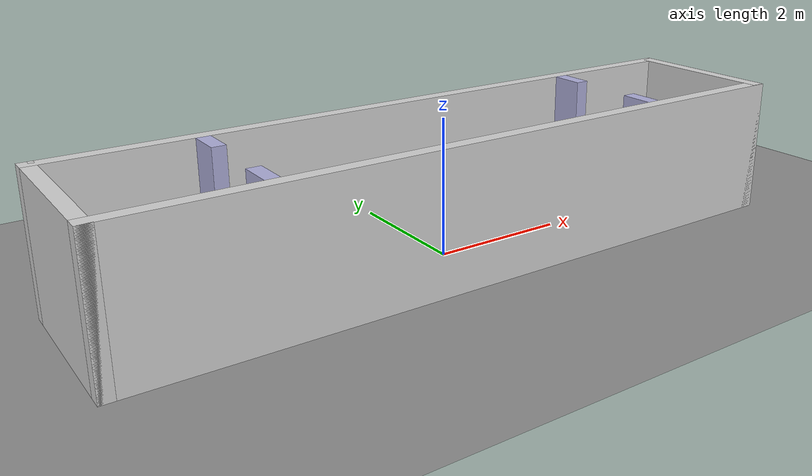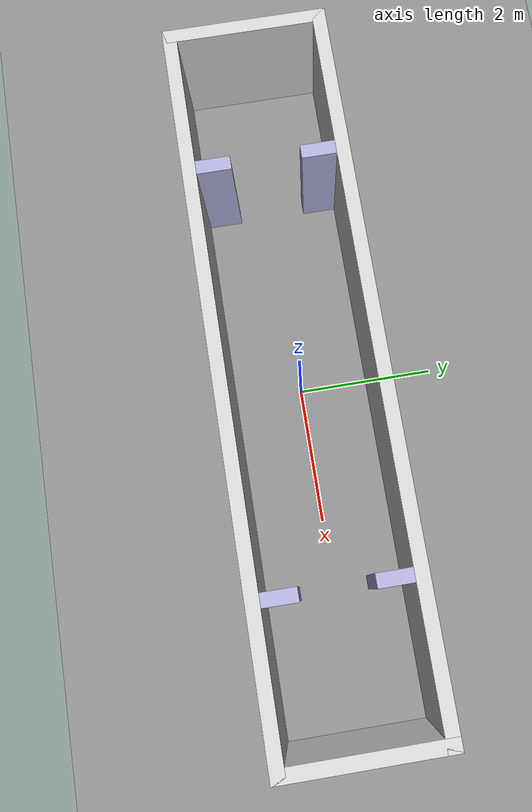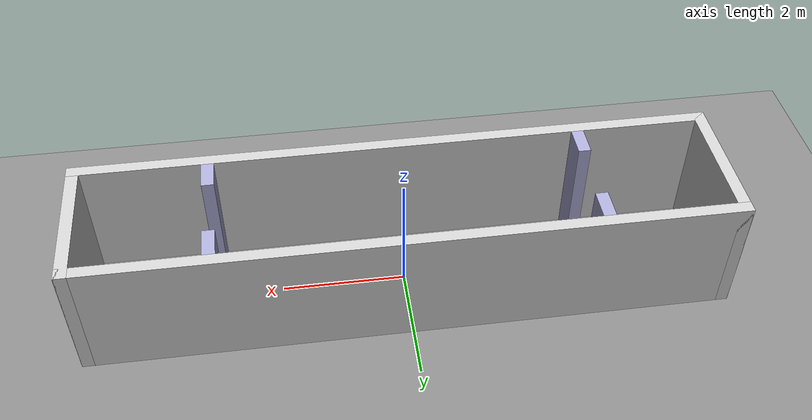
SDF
<?xml version="1.0"?>
<sdf version="1.9">
  <world name="symmetric_corridor">

    <!-- ═══ Plugins requeridos por Ignition Fortress ═══════════════════ -->
    <plugin filename="gz-sim-physics-system"
            name="gz::sim::systems::Physics"/>
    <plugin filename="gz-sim-user-commands-system"
            name="gz::sim::systems::UserCommands"/>
    <plugin filename="gz-sim-scene-broadcaster-system"
            name="gz::sim::systems::SceneBroadcaster"/>
    <plugin filename="gz-sim-contact-system"
            name="gz::sim::systems::Contact"/>
    <!-- OBLIGATORIO para que el RPLIDAR (y cualquier sensor) genere datos -->
    <plugin filename="gz-sim-sensors-system"
            name="gz::sim::systems::Sensors">
      <render_engine>ogre2</render_engine>
    </plugin>
    <plugin filename="gz-sim-imu-system"
            name="gz::sim::systems::Imu"/>

    <!-- ═══ Física ════════════════════════════════════════════════════ -->
    <physics name="1ms" type="ignored">
      <max_step_size>0.001</max_step_size>
      <real_time_factor>1.0</real_time_factor>
    </physics>

    <!-- ═══ Iluminación ═══════════════════════════════════════════════ -->
    <light type="directional" name="sun">
      <cast_shadows>true</cast_shadows>
      <pose>0 0 10 0 0 0</pose>
      <diffuse>0.9 0.9 0.9 1</diffuse>
      <specular>0.3 0.3 0.3 1</specular>
      <direction>-0.5 0.1 -0.9</direction>
    </light>

    <!-- Luz adicional relleno para evitar zonas negras en R1/R2 -->
    <light type="point" name="fill_light">
      <pose>0 0 1.8 0 0 0</pose>
      <diffuse>0.4 0.4 0.4 1</diffuse>
      <specular>0 0 0 1</specular>
      <attenuation>
        <range>15</range>
        <linear>0.05</linear>
        <constant>0.1</constant>
        <quadratic>0.0</quadratic>
      </attenuation>
    </light>

    <!-- ═══ Suelo ══════════════════════════════════════════════════════ -->
    <model name="ground_plane">
      <static>true</static>
      <link name="link">
        <collision name="col">
          <geometry>
            <plane><normal>0 0 1</normal><size>25 25</size></plane>
          </geometry>
        </collision>
        <visual name="vis">
          <geometry>
            <plane><normal>0 0 1</normal><size>25 25</size></plane>
          </geometry>
          <material>
            <ambient>0.55 0.55 0.55 1</ambient>
            <diffuse>0.55 0.55 0.55 1</diffuse>
          </material>
        </visual>
      </link>
    </model>

    <!-- ═══ Paredes exteriores ═════════════════════════════════════════
         Grosor: 0.2 m   Altura: 2.0 m   z_centro = 1.0 m
    ══════════════════════════════════════════════════════════════════ -->

    <!-- Pared norte  (y = 1.0 → cara interior) -->
    <model name="wall_north">
      <static>true</static>
      <pose>0 1.1 1 0 0 0</pose>
      <link name="link">
        <collision name="col"><geometry><box><size>10.4 0.2 2.0</size></box></geometry></collision>
        <visual name="vis">
          <geometry><box><size>10.4 0.2 2.0</size></box></geometry>
          <material><ambient>0.82 0.82 0.82 1</ambient><diffuse>0.82 0.82 0.82 1</diffuse></material>
        </visual>
      </link>
    </model>

    <!-- Pared sur  (y = -1.0 → cara interior) -->
    <model name="wall_south">
      <static>true</static>
      <pose>0 -1.1 1 0 0 0</pose>
      <link name="link">
        <collision name="col"><geometry><box><size>10.4 0.2 2.0</size></box></geometry></collision>
        <visual name="vis">
          <geometry><box><size>10.4 0.2 2.0</size></box></geometry>
          <material><ambient>0.82 0.82 0.82 1</ambient><diffuse>0.82 0.82 0.82 1</diffuse></material>
        </visual>
      </link>
    </model>

    <!-- Pared oeste  (x = -5.0 → cara interior) -->
    <model name="wall_west">
      <static>true</static>
      <pose>-5.1 0 1 0 0 0</pose>
      <link name="link">
        <collision name="col"><geometry><box><size>0.2 2.4 2.0</size></box></geometry></collision>
        <visual name="vis">
          <geometry><box><size>0.2 2.4 2.0</size></box></geometry>
          <material><ambient>0.82 0.82 0.82 1</ambient><diffuse>0.82 0.82 0.82 1</diffuse></material>
        </visual>
      </link>
    </model>

    <!-- Pared este  (x = 5.0 → cara interior) -->
    <model name="wall_east">
      <static>true</static>
      <pose>5.1 0 1 0 0 0</pose>
      <link name="link">
        <collision name="col"><geometry><box><size>0.2 2.4 2.0</size></box></geometry></collision>
        <visual name="vis">
          <geometry><box><size>0.2 2.4 2.0</size></box></geometry>
          <material><ambient>0.82 0.82 0.82 1</ambient><diffuse>0.82 0.82 0.82 1</diffuse></material>
        </visual>
      </link>
    </model>

    <!-- Tabique izquierdo — parte norte (y=0.5 a y=1.0) -->
    <model name="tabique_left_top">
      <static>true</static>
      <pose>-3 0.75 1 0 0 0</pose>
      <link name="link">
        <collision name="col"><geometry><box><size>0.2 0.5 2.0</size></box></geometry></collision>
        <visual name="vis">
          <geometry><box><size>0.2 0.5 2.0</size></box></geometry>
          <material><ambient>0.68 0.68 0.85 1</ambient><diffuse>0.68 0.68 0.85 1</diffuse></material>
        </visual>
      </link>
    </model>

    <!-- Tabique izquierdo — parte sur (y=-1.0 a y=-0.5) -->
    <model name="tabique_left_bottom">
      <static>true</static>
      <pose>-3 -0.75 1 0 0 0</pose>
      <link name="link">
        <collision name="col"><geometry><box><size>0.2 0.5 2.0</size></box></geometry></collision>
        <visual name="vis">
          <geometry><box><size>0.2 0.5 2.0</size></box></geometry>
          <material><ambient>0.68 0.68 0.85 1</ambient><diffuse>0.68 0.68 0.85 1</diffuse></material>
        </visual>
      </link>
    </model>

    <!-- Tabique derecho — parte norte (espejo exacto) -->
    <model name="tabique_right_top">
      <static>true</static>
      <pose>3 0.75 1 0 0 0</pose>
      <link name="link">
        <collision name="col"><geometry><box><size>0.2 0.5 2.0</size></box></geometry></collision>
        <visual name="vis">
          <geometry><box><size>0.2 0.5 2.0</size></box></geometry>
          <material><ambient>0.68 0.68 0.85 1</ambient><diffuse>0.68 0.68 0.85 1</diffuse></material>
        </visual>
      </link>
    </model>

    <!-- Tabique derecho — parte sur (espejo exacto) -->
    <model name="tabique_right_bottom">
      <static>true</static>
      <pose>3 -0.75 1 0 0 0</pose>
      <link name="link">
        <collision name="col"><geometry><box><size>0.2 0.5 2.0</size></box></geometry></collision>
        <visual name="vis">
          <geometry><box><size>0.2 0.5 2.0</size></box></geometry>
          <material><ambient>0.68 0.68 0.85 1</ambient><diffuse>0.68 0.68 0.85 1</diffuse></material>
        </visual>
      </link>
    </model>

  </world>
</sdf>
